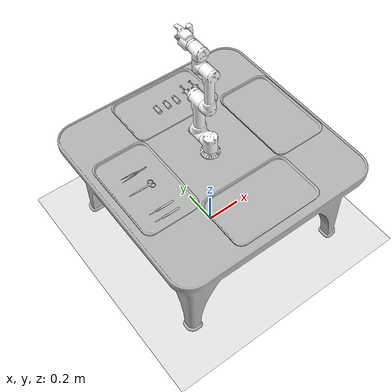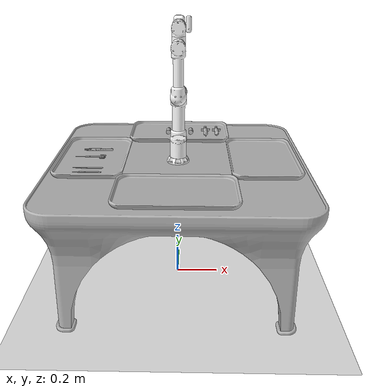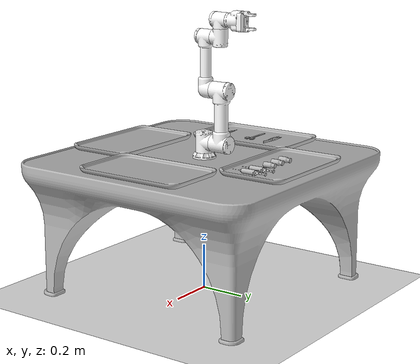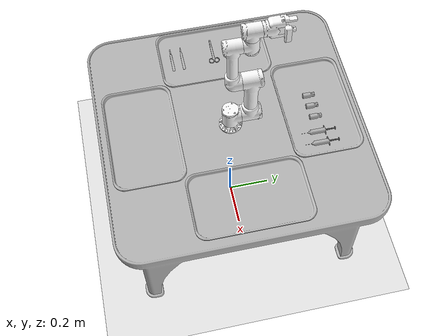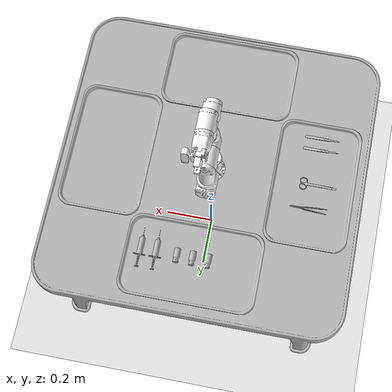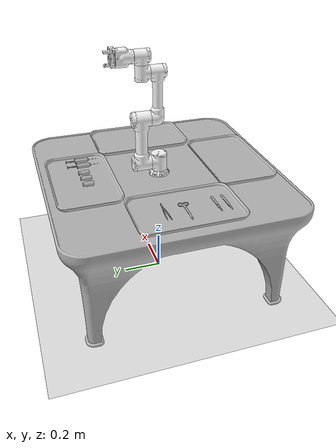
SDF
<?xml version="1.0"?>
<sdf version="1.7">
    <world name='dispensary'>
        <!--                         Physics Elements                          -->
        <physics name="1ms" type="ode">
            <max_step_size>0.01</max_step_size>
            <real_time_factor>1.0</real_time_factor>
            <ode>
                <solver>
                    <type>quick</type> <!-- Use a simpler solver -->
                    <iters>10</iters> <!-- Reduce the number of iterations -->
                </solver>
                <constraints>
                    <cfm>0.5</cfm> <!-- Increase constraint force mixing -->
                    <erp>0.1</erp> <!-- Reduce error reduction parameter -->
                </constraints>
            </ode>
        </physics>
        <plugin
            filename="ignition-gazebo-physics-system"
            name="ignition::gazebo::systems::Physics">
        </plugin>
        <plugin
            filename="ignition-gazebo-user-commands-system"
            name="ignition::gazebo::systems::UserCommands">
        </plugin>
        <plugin
            filename="ignition-gazebo-scene-broadcaster-system"
            name="ignition::gazebo::systems::SceneBroadcaster">
        </plugin>
        <plugin
            filename="ignition-gazebo-sensors-system"
            name="ignition::gazebo::systems::Sensors">
            <render_engine>ogre</render_engine>
        </plugin>

        <!-- World Lighting -->
        <light type="directional" name="sun">
            <cast_shadows>true</cast_shadows>
            <pose>0 0 10 0 0 0</pose>
            <diffuse>0.8 0.8 0.8 1</diffuse>
            <specular>0.2 0.2 0.2 1</specular>
            <attenuation>
                <range>1000</range>
                <constant>0.9</constant>
                <linear>0.01</linear>
                <quadratic>0.001</quadratic>
            </attenuation>
            <direction>-0.5 0.1 -0.9</direction>
        </light>

        <!--                            UI Elements                            -->
        <gui fullscreen="0">

            <!-- 3D scene -->
            <plugin filename="GzScene3D" name="3D View">
                <ignition-gui>
                <title>3D View</title>
                <property type="bool" key="showTitleBar">false</property>
                <property type="string" key="state">docked</property>
                </ignition-gui>

                <engine>ogre2</engine>
                <scene>scene</scene>
                <ambient_light>0.4 0.4 0.4</ambient_light>
                <background_color>0.6 0.6 0.6</background_color>
                <camera_pose>2 2 2 0 0.5 -2.5</camera_pose>
            </plugin>

            <!-- World Control Panel -->
            <plugin filename="WorldControl" name="World control">
                <ignition-gui>
                <title>World control</title>
                <property type="bool" key="showTitleBar">false</property>
                <property type="bool" key="resizable">false</property>
                <property type="double" key="height">72</property>
                <property type="double" key="width">121</property>
                <property type="double" key="z">1</property>

                <property type="string" key="state">floating</property>
                <anchors target="3D View">
                    <line own="left" target="left"/>
                    <line own="bottom" target="bottom"/>
                </anchors>
                </ignition-gui>

                <play_pause>true</play_pause>
                <step>true</step>
                <start_paused>true</start_paused>

            </plugin>

            <!-- World Statistics Panel -->
            <plugin filename="WorldStats" name="World stats">
                <ignition-gui>
                <title>World stats</title>
                <property type="bool" key="showTitleBar">false</property>
                <property type="bool" key="resizable">false</property>
                <property type="double" key="height">110</property>
                <property type="double" key="width">290</property>
                <property type="double" key="z">1</property>

                <property type="string" key="state">floating</property>
                <anchors target="3D View">
                    <line own="right" target="right"/>
                    <line own="bottom" target="bottom"/>
                </anchors>
                </ignition-gui>

                <sim_time>true</sim_time>
                <real_time>true</real_time>
                <real_time_factor>true</real_time_factor>
                <iterations>true</iterations>
            </plugin>

            <!-- Joint Position Controller Panel -->
            <plugin filename="JointPositionController" name="JointPositionController">
                <ignition-gui>
                <property type="double" key="height">600</property>
                <property type="double" key="width">400</property>

                <property type="string" key="state">floating</property>
                <anchors target="3D View">
                    <line own="right" target="right"/>
                    <line own="top" target="top"/>
                </anchors>
                </ignition-gui>
                <model_name>eb100</model_name>
            </plugin>

            <!-- Camera Tracking Panel -->
            <plugin filename="CameraTracking" name="Camera Tracking">
                <ignition-gui>
                <property key="resizable" type="bool">false</property>
                <property key="width" type="double">5</property>
                <property key="height" type="double">5</property>
                <property key="state" type="string">floating</property>
                <property key="showTitleBar" type="bool">false</property>
                </ignition-gui>
            </plugin>

            <!-- Image Display Panel -->
            <plugin filename="ImageDisplay" name="Image Display">
                <ignition-gui>
                <property key="state" type="string">docked</property>
                </ignition-gui>
            </plugin>

            <!-- Component Inspector Panel -->
            <plugin filename="ComponentInspector" name="Component inspector">
                <ignition-gui>
                <property type="string" key="state">docked</property>
                </ignition-gui>
            </plugin>

            <!-- Entity tree -->
            <plugin filename="EntityTree" name="Entity tree">
                <ignition-gui>
                <property type="string" key="state">docked</property>
                </ignition-gui>
            </plugin>

        </gui>

        <!--                              Objects                              -->
        <!-- Ground Plane -->
        <model name='ground_plane'>
            <static>true</static> <!-- This makes the ground plane static -->
            <pose>0 0 0 0 0 0</pose>
            <link name='ground_link'>
                <collision name='ground_collision'>
                    <geometry>
                        <plane>
                            <normal>0 0 1</normal>
                            <size>100 100</size>
                        </plane>
                    </geometry>
                </collision>
                <visual name='ground_visual'>
                    <geometry>
                        <plane>
                            <normal>0 0 1</normal>
                            <size>100 100</size>
                        </plane>
                    </geometry>
                    <material>
                        <script>
                            <uri>file://media/materials/scripts/gazebo.material</uri>
                            <name>Gazebo/White</name>
                        </script>
                        <ambient>1 1 1 0.5</ambient> <!-- Set ambient color with transparency -->
                        <diffuse>1 1 1 0.5</diffuse> <!-- Set diffuse color with transparency -->
                        <specular>1 1 1 0.5</specular> <!-- Set specular color with transparency -->
                    </material>
                </visual>
            </link>
        </model>

        <!-- Table -->
        <include>
            <name>table_link</name>
            <uri>
                ../models/table/table_link.sdf
            </uri>
            <pose>0 0 0.01 0 0 0</pose>
        </include>

        <!-- Source Tray - Reusable -->
        <include>
            <name>source_reusable_tray_link</name>
            <uri>
                ../models/tray/tray_link.sdf
            </uri>
            <pose>-0.40 0 0.61 0 0 0</pose>
        </include>

        <!-- Destination Tray - Reusable -->
        <include>
            <name>destination_resuable_tray_link</name>
            <uri>
                ../models/tray/tray_link.sdf
            </uri>
            <pose>0.40 0 0.61 0 0 0</pose>
        </include>

        <!-- Destination Tray - Disposable -->
        <include>
            <name>source_disposable_tray_link</name>
            <uri>
                ../models/tray/tray_link.sdf
            </uri>
            <pose>0 -0.40 0.61 0 0 1.5708</pose>
        </include>

        <!-- Source Tray - Disposable -->
        <include>
            <name>destination_disposable_tray_link</name>
            <uri>
                ../models/tray/tray_link.sdf
            </uri>
            <pose>0 0.40 0.61 0 0 1.5708</pose>
        </include>

        <!--                               Tools                               -->
        <!-- Syringe x 2 -->
        <include>
            <name>syringe1</name>
            <uri>
                ../models/syringe/syringe.sdf
            </uri>
            <pose>0.140 0.380 0.635 1.5708 1.5708 0</pose>
        </include>
        <include>
            <name>syringe2</name>
            <uri>
                ../models/syringe/syringe.sdf
            </uri>
            <pose>0.200 0.380 0.635 1.5708 1.5708 0</pose>
        </include>

        <!-- Vaccine Bottle x 3 -->
        <include>
            <name>vaccine1</name>
            <uri>
                ../models/vaccine_bottle/propofol.sdf
            </uri>
            <pose>0.060 0.380 0.635 0 0 1.5708</pose>
        </include>
        <include>
            <name>vaccine2</name>
            <uri>
                ../models/vaccine_bottle/ibuprofen.sdf
            </uri>
            <pose>0 0.380 0.635 0 0 1.5708</pose>
        </include>
        <include>
            <name>vaccine3</name>
            <uri>
                ../models/vaccine_bottle/ibuprofen.sdf
            </uri>
            <pose>-0.060 0.380 0.635 0 0 1.5708</pose>
        </include>

        <!-- Scalpel x 2 -->
        <include>
            <name>scalpel1</name>
            <uri>
                ../models/scalpel/scalpel.sdf
            </uri>
            <pose>-0.40 -0.20 0.625 0 0 0</pose>
        </include>
        <include>
            <name>scalpel2</name>
            <uri>
                ../models/scalpel/scalpel.sdf
            </uri>
            <pose>-0.40 -0.15 0.625 0 0 0</pose>
        </include>

        <!-- Scissors x 1 -->
        <include>
            <name>scissors1</name>
            <uri>
                ../models/scissors/scissors.sdf
            </uri>
            <pose>-0.40 0 0.625 1.5708 -1.5708 0</pose>
        </include>

        <!-- Tweezer x 1 -->
        <include>
            <name>tweezer1</name>
            <uri>
                ../models/tweezer/tweezer.sdf
            </uri>
            <pose>-0.40 0.1 0.625 1.5708 -1.5708 0</pose>
        </include>

        <!--                               Robot                               -->
        <include>
            <name>eb100</name>
            <uri>
                ../models/robot_arm/eb100.sdf
            </uri>
            <pose>0 0 0.6 0 0 0</pose>
        </include>

    </world>
</sdf>

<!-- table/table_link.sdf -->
<sdf version="1.6">
    <model name="table_link">
        <static>true</static>
        <link name="link">
            <collision name="collision">
                <pose>0 0 0.001 1.5708 0 1.5708</pose>
                <geometry>
                    <mesh>
                        <uri>meshes/o_table_link.obj</uri>
                    </mesh>
                </geometry>
            </collision>
            <visual name="visual">
                <pose>0 0 0.001 1.5708 0 1.5708</pose>
                <geometry>
                    <mesh>
                        <uri>meshes/o_table_link.obj</uri>
                    </mesh>
                </geometry>
            </visual>
        </link>
    </model>
</sdf>

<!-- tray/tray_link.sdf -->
<sdf version="1.6">
    <model name="tray_link">
        <static>false</static>
        <link name="link">
            <collision name="collision">
                <pose>0 0 0.001 1.5708 0 1.5708</pose>
                <geometry>
                    <mesh>
                        <uri>meshes/o_tray_link_v2.obj</uri>
                    </mesh>
                </geometry>
            </collision>
            <visual name="visual">
                <pose>0 0 0.001 1.5708 0 1.5708</pose>
                <geometry>
                    <mesh>
                        <uri>meshes/o_tray_link_v2.obj</uri>
                    </mesh>
                </geometry>
            </visual>
        </link>
    </model>
</sdf>

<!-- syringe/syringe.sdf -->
<sdf version="1.6">
    <model name="syringe">
        <static>false</static>
        <link name="link">
            <collision name="collision">
                <pose>0 0 0.001 1.5708 0 1.5708</pose>
                <geometry>
                    <mesh>
                        <uri>meshes/o_syringe_part_v3.obj</uri>
                    </mesh>
                </geometry>
            </collision>
            <visual name="visual">
                <pose>0 0 0.001 1.5708 0 1.5708</pose>
                <geometry>
                    <mesh>
                        <uri>meshes/o_syringe_part_v3.obj</uri>
                    </mesh>
                </geometry>
            </visual>
        </link>
    </model>
</sdf>

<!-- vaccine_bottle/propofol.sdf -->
<sdf version="1.6">
    <model name="vaccine">
        <static>false</static>
        <link name="link">
            <collision name="collision">
                <pose>0 0 0.001 0 0 -1.5708</pose>
                <geometry>
                    <mesh>
                        <uri>meshes/o_propofol.obj</uri>
                    </mesh>
                </geometry>
            </collision>
            <visual name="visual">
                <pose>0 0 0.001 0 0 -1.5708</pose>
                <geometry>
                    <mesh>
                        <uri>meshes/o_propofol.obj</uri>
                    </mesh>
                </geometry>
            </visual>
        </link>
    </model>
</sdf>

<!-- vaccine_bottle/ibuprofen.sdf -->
<sdf version="1.6">
    <model name="vaccine">
        <static>false</static>
        <link name="link">
            <collision name="collision">
                <pose>0 0 0.001 0 0 -1.5708</pose>
                <geometry>
                    <mesh>
                        <uri>meshes/o_ibuprofen.obj</uri>
                    </mesh>
                </geometry>
            </collision>
            <visual name="visual">
                <pose>0 0 0.001 0 0 -1.5708</pose>
                <geometry>
                    <mesh>
                        <uri>meshes/o_ibuprofen.obj</uri>
                    </mesh>
                </geometry>
            </visual>
        </link>
    </model>
</sdf>

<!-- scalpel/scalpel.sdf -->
<sdf version="1.6">
    <model name="scalpel">
        <static>false</static>
        <link name="link">
            <collision name="collision">
                <pose>0 0 0.001 0 0 0</pose>
                <geometry>
                    <mesh>
                        <uri>meshes/o_scalpel_v2.obj</uri>
                    </mesh>
                </geometry>
            </collision>
            <visual name="visual">
                <pose>0 0 0.001 0 0 0</pose>
                <geometry>
                    <mesh>
                        <uri>meshes/o_scalpel_v2.obj</uri>
                    </mesh>
                </geometry>
            </visual>
        </link>
    </model>
</sdf>

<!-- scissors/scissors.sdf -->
<sdf version="1.6">
    <model name="scissors">
        <static>false</static>
        <link name="link">
            <collision name="collision">
                <pose>0 0 0.001 1.5708 0 1.5708</pose>
                <geometry>
                    <mesh>
                        <uri>meshes/o_scissors_v3.obj</uri>
                    </mesh>
                </geometry>
            </collision>
            <visual name="visual">
                <pose>0 0 0.001 1.5708 0 1.5708</pose>
                <geometry>
                    <mesh>
                        <uri>meshes/o_scissors_v3.obj</uri>
                    </mesh>
                </geometry>
            </visual>
        </link>
    </model>
</sdf>

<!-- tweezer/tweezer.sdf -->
<sdf version="1.6">
    <model name="tweezer">
        <static>false</static>
        <link name="link">
            <collision name="collision">
                <pose>0 0 0.001 1.5708 0 1.5708</pose>
                <geometry>
                    <mesh>
                        <uri>meshes/o_tweezers_part_v3.obj</uri>
                    </mesh>
                </geometry>
            </collision>
            <visual name="visual">
                <pose>0 0 0.001 1.5708 0 1.5708</pose>
                <geometry>
                    <mesh>
                        <uri>meshes/o_tweezers_part_v3.obj</uri>
                    </mesh>
                </geometry>
            </visual>
        </link>
    </model>
</sdf>

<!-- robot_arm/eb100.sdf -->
<sdf version="1.7">
    <model name="EB100">
        <!-- Fix To World -->
        <joint name="ground_plane" type="fixed">
            <parent>world</parent>
            <child>base_link</child>
        </joint>
        <!-- Arm Links -->
        <link name="base_link">
            <visual name="base_link_visual">
                <geometry>
                    <mesh>
                        <uri>base_link/base_link.STL</uri>
                    </mesh>
                </geometry>
                <material>
                    <diffuse>1.0 1.0 1.0</diffuse>
                    <specular>1.0 1.0 1.0</specular>
                </material>
            </visual>
            <collision name="base_link_collision">
                <geometry>
                    <mesh>
                        <uri>base_link/base_link.STL</uri>
                    </mesh>
                </geometry>
                <surface>
                    <friction>
                        <ode>
                            <mu>1.05</mu>
                            <mu2>1.05</mu2>
                        </ode>
                    </friction>
                </surface>
            </collision>
            <inertial>
                <pose>-1.33024218671373E-07 5.42254364069815E-07 0.0149456241765188 0 0 0</pose>
                <mass>2.814271300104062</mass>
                <inertia>
                    <ixx>0.0075390636364814695</ixx>
                    <iyy>0.010508017427382959</iyy>
                    <izz>0.009864933638708275</izz>
                    <ixy>-1.5053124574783335e-05</ixy>
                    <ixz>-0.0012144328835738973</ixz>
                    <iyz>1.0434803501032979e-05</iyz>
                </inertia>
            </inertial>
        </link>
        <link name="link1">
            <pose relative_to="joint1">0 0 0 0 0 0</pose>
            <visual name="link1_visual">
                <geometry>
                    <mesh>
                        <uri>link_1/link1.STL</uri>
                    </mesh>
                </geometry>
                <material>
                    <diffuse>1.0 1.0 1.0</diffuse>
                    <specular>1.0 1.0 1.0</specular>
                </material>
            </visual>
            <collision name="link1_collision">
                <geometry>
                    <mesh>
                        <uri>link_1/link1.STL</uri>
                    </mesh>
                </geometry>
                <surface>
                    <friction>
                        <ode>
                            <mu>1.05</mu>
                            <mu2>1.05</mu2>
                        </ode>
                    </friction>
                </surface>
            </collision>
            <inertial>
                <pose>-3.49038868342818E-05 -0.00648920194363665 0.00701216463523289 0 0 0</pose>
                <mass>2.6433170427227215</mass>
                <inertia>
                    <ixx>0.017405076982879724</ixx>
                    <iyy>0.015352077935781732</iyy>
                    <izz>0.005987891663073857</izz>
                    <ixy>-8.687986369621078e-09</ixy>
                    <ixz>-1.6277819062920423e-08</ixz>
                    <iyz>0.004510855959102245</iyz>
                </inertia>
            </inertial>
        </link>
        <link name="link2">
            <pose relative_to="joint2">0 0 0 0 0 0</pose>
            <visual name="link2_visual">
                <geometry>
                    <mesh>
                        <uri>link_2/link2.STL</uri>
                    </mesh>
                </geometry>
                <material>
                    <diffuse>1.0 1.0 1.0</diffuse>
                    <specular>1.0 1.0 1.0</specular>
                </material>
            </visual>
            <collision name="link2_collision">
                <geometry>
                    <mesh>
                        <uri>link_2/link2.STL</uri>
                    </mesh>
                </geometry>
                <surface>
                    <friction>
                        <ode>
                            <mu>1.05</mu>
                            <mu2>1.05</mu2>
                        </ode>
                    </friction>
                </surface>
            </collision>
            <inertial>
                <pose>5.25111081205538E-05 0.11715485741318 -0.00391005557091638 0 0 0</pose>
                <mass>2.6652755331661186</mass>
                <inertia>
                    <ixx>0.01778694005635383</ixx>
                    <iyy>0.006044133867952844</iyy>
                    <izz>0.01571095500455695</izz>
                    <ixy>8.70635625879119e-08</ixy>
                    <ixz>3.752072058394008e-08</ixz>
                    <iyz>-0.004599490295490376</iyz>
                </inertia>
            </inertial>
        </link>
        <link name="link3">
            <pose relative_to="joint3">0 0 0 0 0 0</pose>
            <visual name="link3_visual">
                <geometry>
                    <mesh>
                        <uri>link_3/link3.STL</uri>
                    </mesh>
                </geometry>
                <material>
                    <diffuse>1.0 1.0 1.0</diffuse>
                    <specular>1.0 1.0 1.0</specular>
                </material>
            </visual>
            <collision name="link3_collision">
                <geometry>
                    <mesh>
                        <uri>link_3/link3.STL</uri>
                    </mesh>
                </geometry>
                <surface>
                    <friction>
                        <ode>
                            <mu>1.05</mu>
                            <mu2>1.05</mu2>
                        </ode>
                    </friction>
                </surface>
            </collision>
            <inertial>
                <pose>-3.34027587025817E-06 0.108727898112191 0.000786655462555005 0 0 0</pose>
                <mass>2.3293714829045733</mass>
                <inertia>
                    <ixx>0.0075496764161139766</ixx>
                    <iyy>0.009680676080191398</iyy>
                    <izz>0.007944557422008086</izz>
                    <ixy>-0.0024320464513492225</ixy>
                    <ixz>-0.003250815048103007</ixz>
                    <iyz>-0.0021316282421730694</iyz>
                </inertia>
            </inertial>
        </link>
        <link name="link4">
            <pose relative_to="joint4">0 0 0 0 0 0</pose>
            <visual name="link4_visual">
                <geometry>
                    <mesh>
                        <uri>link_4/link4.STL</uri>
                    </mesh>
                </geometry>
                <material>
                    <diffuse>1.0 1.0 1.0</diffuse>
                    <specular>1.0 1.0 1.0</specular>
                </material>
            </visual>
            <collision name="link4_collision">
                <geometry>
                    <mesh>
                        <uri>link_4/link4.STL</uri>
                    </mesh>
                </geometry>
                <surface>
                    <friction>
                        <ode>
                            <mu>1.05</mu>
                            <mu2>1.05</mu2>
                        </ode>
                    </friction>
                </surface>
            </collision>
            <inertial>
                <pose>-1.44468152066875E-05 0.00662054639180243 0.0677858766519277 0 0 0</pose>
                <mass>2.3104763646281508</mass>
                <inertia>
                    <ixx>0.007764568814864828</ixx>
                    <iyy>0.008015776929980149</iyy>
                    <izz>0.009955882308071066</izz>
                    <ixy>0.003371475204045935</ixy>
                    <ixz>-0.002343621113168248</ixz>
                    <iyz>0.0022917526161470624</iyz>
                </inertia>
            </inertial>
        </link>
        <link name="link5">
            <pose relative_to="joint5">0 0 0 0 0 0</pose>
            <visual name="link5_visual">
                <geometry>
                    <mesh>
                        <uri>link_5/link5.STL</uri>
                    </mesh>
                </geometry>
                <material>
                    <diffuse>1.0 1.0 1.0</diffuse>
                    <specular>1.0 1.0 1.0</specular>
                </material>
            </visual>
            <collision name="link5_collision">
                <geometry>
                    <mesh>
                        <uri>link_5/link5.STL</uri>
                    </mesh>
                </geometry>
                <surface>
                    <friction>
                        <ode>
                            <mu>1.05</mu>
                            <mu2>1.05</mu2>
                        </ode>
                    </friction>
                </surface>
            </collision>
            <inertial>
                <pose>1.588131219553E-05 0.0677856742896595 0.00662015510693871 0 0 0</pose>
                <mass>2.6226426154892004</mass>
                <inertia>
                    <ixx>0.029070538014399377</ixx>
                    <iyy>0.027638529986528795</iyy>
                    <izz>0.004251111234400737</izz>
                    <ixy>6.208738268725568e-07</ixy>
                    <ixz>-1.0059151925023392e-05</ixz>
                    <iyz>-0.007424306477850814</iyz>
                </inertia>
            </inertial>
        </link>
        <link name="link6">
            <pose relative_to="joint6">0 0 0 0 0 0</pose>
            <visual name="link6_visual">
                <geometry>
                    <mesh>
                        <uri>link_6/link6.STL</uri>
                    </mesh>
                </geometry>
                <material>
                    <diffuse>1.0 1.0 1.0</diffuse>
                    <specular>1.0 1.0 1.0</specular>
                </material>
            </visual>
            <collision name="link6_collision">
                <geometry>
                    <mesh>
                        <uri>link_6/link6.STL</uri>
                    </mesh>
                </geometry>
                <surface>
                    <friction>
                        <ode>
                            <mu>1.05</mu>
                            <mu2>1.05</mu2>
                        </ode>
                    </friction>
                </surface>
            </collision>
            <inertial>
                <pose>-4.85506410887449E-05 -0.000772066948343975 0.0864369192980011 0 0 0</pose>
                <mass>1.5025804886626795</mass>
                <inertia>
                    <ixx>0.002940555801469018</ixx>
                    <iyy>0.00392105201248677</iyy>
                    <izz>0.0054115603870960195</izz>
                    <ixy>-0.00042391108351381507</ixy>
                    <ixz>0.000610007735338717</ixz>
                    <iyz>0.00012647545430836214</iyz>
                </inertia>
            </inertial>
        </link>

        <!-- Gripper Finger Links -->
        <link name="gripper_left_link">
            <pose relative_to="gripper_left_joint">0 0 0 0 0 0</pose>
            <visual name="gripper_left_visual">
                <geometry>
                    <mesh>
                        <uri>gripper_left_link/gripper_left_link.STL</uri>
                    </mesh>
                </geometry>
                <material>
                    <diffuse>1.0 1.0 1.0</diffuse>
                    <specular>1.0 1.0 1.0</specular>
                </material>
            </visual>
            <collision name="gripper_left_collision">
                <geometry>
                    <mesh>
                        <uri>gripper_left_link/gripper_left_link.STL</uri>
                    </mesh>
                </geometry>
                <surface>
                    <friction>
                        <ode>
                            <mu>2.15</mu>
                            <mu2>2.15</mu2>
                        </ode>
                    </friction>
                </surface>
            </collision>
            <inertial>
                <pose>-0.230028099250672 0.048706949092005 0.296932678246992 0 0 0</pose>
                <mass>0.02238453537819424</mass>
                <inertia>
                    <ixx>6.74804167363695e-05</ixx>
                    <iyy>6.627189221641395e-05</iyy>
                    <izz>1.550396267804825e-05</izz>
                    <ixy>-4.1027443646025676e-09</ixy>
                    <ixz>1.8693673970152995e-08</ixz>
                    <iyz>1.1967548474390802e-05</iyz>
                </inertia>
            </inertial>
        </link>
        <link name="gripper_right_link">
            <pose relative_to="gripper_right_joint">0 0 0 0 0 0</pose>
            <visual name="gripper_right_visual">
                <geometry>
                    <mesh>
                        <uri>gripper_right_link/gripper_right_link.STL</uri>
                    </mesh>
                </geometry>
                <material>
                    <diffuse>1.0 1.0 1.0</diffuse>
                    <specular>1.0 1.0 1.0</specular>
                </material>
            </visual>
            <collision name="gripper_right_collision">
                <geometry>
                    <mesh>
                        <uri>gripper_right_link/gripper_right_link.STL</uri>
                    </mesh>
                </geometry>
                <surface>
                    <friction>
                        <ode>
                            <mu>2.15</mu>
                            <mu2>2.15</mu2>
                        </ode>
                    </friction>
                </surface>
            </collision>
            <inertial>
                <pose>0.279241572361513 0.0486859261203842 -0.281739991890775 0 0 0</pose>
                <mass>0.02238453537819424</mass>
                <inertia>
                    <ixx>6.74804167363695e-05</ixx>
                    <iyy>6.627189221641395e-05</iyy>
                    <izz>1.550396267804825e-05</izz>
                    <ixy>-4.1027443646025676e-09</ixy>
                    <ixz>1.8693673970152995e-08</ixz>
                    <iyz>1.1967548474390802e-05</iyz>
                </inertia>
            </inertial>
        </link>
        <link name="camera_link">
            <pose relative_to="camera_joint">0 0 0 0 -1.5708 0</pose>
            <visual name="camera_link_visual">
                <geometry>
                    <mesh>
                        <uri>camera_link/camera.stl</uri>
                        <scale>0.001 0.001 0.001</scale>
                    </mesh>
                </geometry>
                <material>
                    <diffuse>1.0 1.0 1.0</diffuse>
                    <specular>1.0 1.0 1.0</specular>
                </material>
            </visual>
            <collision name="camera_link_collision">
                <geometry>
                    <mesh>
                        <uri>camera_link/camera.stl</uri>
                        <scale>0.001 0.001 0.001</scale>
                    </mesh>
                </geometry>
                <surface>
                    <friction>
                        <ode>
                            <mu>1.05</mu>
                            <mu2>1.05</mu2>
                        </ode>
                    </friction>
                </surface>
            </collision>
            <inertial>
                <pose>-0.011644453579349 -0.000127541365236405 -0.0168801747695049 0 0 0</pose>
                <mass>0.000078</mass>
                <inertia>
                    <ixx>1.4393E-05</ixx>
                    <ixy>1.0273E-08</ixy>
                    <ixz>-7.719E-10</ixz>
                    <iyy>4.4785E-06</iyy>
                    <iyz>4.6621E-09</iyz>
                    <izz>1.2723E-05</izz>
                </inertia>
            </inertial>
            <sensor name="camera" type="camera">
                <camera>
                    <horizontal_fov>1.919</horizontal_fov>
                    <image>
                        <width>640</width>
                        <height>480</height>
                        <format>R8G8B8</format>
                    </image>
                    <clip>
                        <near>0.1</near>
                        <far>100</far>
                    </clip>
                </camera>
                <always_on>1</always_on>
                <update_rate>30</update_rate>
                <visualize>true</visualize>
                <topic>camera/image</topic> <!-- Updated topic name for clarity -->
            </sensor>
            <plugin filename="ignition-gazebo-camera-system" name="ignition::gazebo::systems::Camera">
                <camera>
                    <image>
                        <width>640</width>
                        <height>480</height>
                        <format>R8G8B8</format>
                    </image>
                    <update_rate>30</update_rate>
                </camera>
            </plugin>
        </link>

        <!-- Arm Joints -->
        <joint name="joint1" type="revolute">
            <pose relative_to="base_link">0.00017721 -0.00015518 0.076035 -1.5708 0 0</pose>
            <parent>base_link</parent>
            <child>link1</child>
            <axis>
                <xyz>0 -1 0</xyz>
                <limit>
                    <effort>87</effort>
                    <lower>-3.1415926535897932384626433832795</lower>
                    <upper>3.1415926535897932384626433832795</upper>
                    <velocity>2.617993877991494</velocity>
                </limit>
                <dynamics>
                    <spring_reference>0</spring_reference>
                    <spring_stiffness>0</spring_stiffness>
                    <damping>21.75</damping>
                    <friction>3.48</friction>
                </dynamics>
            </axis>
        </joint>
        <joint name="joint2" type="revolute">
            <pose relative_to="link1">0 0 0.0911 3.1416 0 0</pose>
            <parent>link1</parent>
            <child>link2</child>
            <axis>
                <xyz>0 0 -1</xyz>
                <limit>
                    <effort>87</effort>
                    <lower>-3.1415926535897932384626433832795</lower>
                    <upper>3.1415926535897932384626433832795</upper>
                    <velocity>2.617993877991494</velocity>
                </limit>
                <dynamics>
                    <spring_reference>0</spring_reference>
                    <spring_stiffness>0</spring_stiffness>
                    <damping>21.75</damping>
                    <friction>3.48</friction>
                </dynamics>
            </axis>
        </joint>
        <joint name="joint3" type="revolute">
            <pose relative_to="link2">0.0002 0.23547 0.083104 0 0 0</pose>
            <parent>link2</parent>
            <child>link3</child>
            <axis>
                <xyz>0 0 -1</xyz>
                <limit>
                    <effort>87</effort>
                    <lower>-3.1415926535897932384626433832795</lower>
                    <upper>3.1415926535897932384626433832795</upper>
                    <velocity>2.617993877991494</velocity>
                </limit>
                <dynamics>
                    <spring_reference>0</spring_reference>
                    <spring_stiffness>0</spring_stiffness>
                    <damping>21.75</damping>
                    <friction>3.48</friction>
                </dynamics>
            </axis>
        </joint>
        <joint name="joint4" type="revolute">
            <pose relative_to="link3">0 0.2290554354712 0 -3.1416 0 0</pose>
            <parent>link3</parent>
            <child>link4</child>
            <axis>
                <xyz>0 0 -1</xyz>
                <limit>
                    <effort>87</effort>
                    <lower>-3.1415926535897932384626433832795</lower>
                    <upper>3.1415926535897932384626433832795</upper>
                    <velocity>2.617993877991494</velocity>
                </limit>
                <dynamics>
                    <spring_reference>0</spring_reference>
                    <spring_stiffness>0</spring_stiffness>
                    <damping>21.75</damping>
                    <friction>3.48</friction>
                </dynamics>
            </axis>
        </joint>
        <joint name="joint5" type="revolute">
            <pose relative_to="link4">0 0 0.0769999999999998 3.1416 0 0</pose>
            <parent>link4</parent>
            <child>link5</child>
            <axis>
                <xyz>0 -1 0</xyz>
                <limit>
                    <effort>12</effort>
                    <lower>-3.1415926535897932384626433832795</lower>
                    <upper>3.1415926535897932384626433832795</upper>
                    <velocity>3.1415926535897932384626433832795</velocity>
                </limit>
                <dynamics>
                    <spring_reference>0</spring_reference>
                    <spring_stiffness>0</spring_stiffness>
                    <damping>3.0</damping>
                    <friction>0.48</friction>
                </dynamics>
            </axis>
        </joint>
        <joint name="joint6" type="revolute">
            <pose relative_to="link5">0 0.077 0 -3.1416 0 0</pose>
            <parent>link5</parent>
            <child>link6</child>
            <axis>
                <xyz>0 0 -1</xyz>
                <limit>
                    <effort>12</effort>
                    <lower>-3.1415926535897932384626433832795</lower>
                    <upper>3.1415926535897932384626433832795</upper>
                    <velocity>3.1415926535897932384626433832795</velocity>
                </limit>
                <dynamics>
                    <spring_reference>0</spring_reference>
                    <spring_stiffness>0</spring_stiffness>
                    <damping>3.0</damping>
                    <friction>0.48</friction>
                </dynamics>
            </axis>
        </joint>

        <!-- Finger Joints -->
        <joint name="gripper_left_joint" type="prismatic">
            <pose relative_to="link6">-0.291197990250782 0.255084835806096 0.0865221108762051 1.57079632679489 0 1.57079632679489</pose>
            <parent>link6</parent>
            <child>gripper_left_link</child>
            <axis>
                <xyz>1 0 0</xyz>
                <limit>
                    <effort>20</effort>
                    <lower>-0.04</lower>
                    <upper>0</upper>
                    <velocity>0.2</velocity>
                </limit>
                <dynamics>
                    <spring_reference>0</spring_reference>
                    <spring_stiffness>0</spring_stiffness>
                    <damping>10</damping>
                    <friction>0.5</friction>
                </dynamics>
            </axis>
        </joint>
        <joint name="gripper_right_joint" type="prismatic">
            <pose relative_to="link6">-0.287864518042259 0.254184835806095 0.086722110876205 1.5707963267949 0 -1.5707963267949</pose>
            <parent>link6</parent>
            <child>gripper_right_link</child>
            <axis>
                <xyz>-1 0 0</xyz>
                <limit>
                    <effort>20</effort>
                    <lower>0.0</lower>
                    <upper>0.04</upper>
                    <velocity>0.2</velocity>
                </limit>
                <dynamics>
                    <spring_reference>0</spring_reference>
                    <spring_stiffness>0</spring_stiffness>
                    <damping>10</damping>
                    <friction>0.5</friction>
                </dynamics>
            </axis>
        </joint>
        <joint name="camera_joint" type="fixed">
            <pose relative_to="link6">0.0600999999999985 -0.000500000224238906 0.127499999999999 0 0 0</pose>
            <parent>link6</parent>
            <child>camera_link</child>
        </joint>

        <!-- Joint controller plugins -->
        <plugin filename="ignition-gazebo-joint-position-controller-system" name="ignition::gazebo::systems::JointPositionController">
            <joint_name>joint1</joint_name>
            <p_gain>50</p_gain>
            <d_gain>20</d_gain>
            <i_gain>0</i_gain>
            <i_min>-1</i_min>
            <i_max>1</i_max>
            <cmd_min>-87</cmd_min>
            <cmd_max>87</cmd_max>
            <topic>/joint_angles/joint1</topic>
        </plugin>
        <plugin filename="ignition-gazebo-joint-position-controller-system" name="ignition::gazebo::systems::JointPositionController">
            <joint_name>joint2</joint_name>
            <p_gain>10000</p_gain>
            <i_gain>0</i_gain>
            <d_gain>500</d_gain>
            <i_max>1</i_max>
            <i_min>-1</i_min>
            <cmd_max>87</cmd_max>
            <cmd_min>-87</cmd_min>
            <topic>/joint_angles/joint2</topic>
        </plugin>
        <plugin filename="ignition-gazebo-joint-position-controller-system" name="ignition::gazebo::systems::JointPositionController">
            <joint_name>joint3</joint_name>
            <p_gain>100</p_gain>
            <i_gain>0</i_gain>
            <d_gain>10</d_gain>
            <i_max>1</i_max>
            <i_min>-1</i_min>
            <cmd_max>87</cmd_max>
            <cmd_min>-87</cmd_min>
            <topic>/joint_angles/joint3</topic>
        </plugin>
        <plugin filename="ignition-gazebo-joint-position-controller-system" name="ignition::gazebo::systems::JointPositionController">
            <joint_name>joint4</joint_name>
            <p_gain>1000</p_gain>
            <i_gain>0</i_gain>
            <d_gain>50</d_gain>
            <i_max>1</i_max>
            <i_min>-1</i_min>
            <cmd_max>87</cmd_max>
            <cmd_min>-87</cmd_min>
            <topic>/joint_angles/joint4</topic>
        </plugin>
        <plugin filename="ignition-gazebo-joint-position-controller-system" name="ignition::gazebo::systems::JointPositionController">
            <joint_name>joint5</joint_name>
            <p_gain>100</p_gain>
            <i_gain>0</i_gain>
            <d_gain>50</d_gain>
            <i_max>1</i_max>
            <i_min>-1</i_min>
            <cmd_max>12</cmd_max>
            <cmd_min>-12</cmd_min>
            <topic>/joint_angles/joint5</topic>
        </plugin>
        <plugin filename="ignition-gazebo-joint-position-controller-system" name="ignition::gazebo::systems::JointPositionController">
            <joint_name>joint6</joint_name>
            <p_gain>100</p_gain>
            <i_gain>0</i_gain>
            <d_gain>10</d_gain>
            <i_max>1</i_max>
            <i_min>-1</i_min>
            <cmd_max>12</cmd_max>
            <cmd_min>-12</cmd_min>
            <topic>/joint_angles/joint6</topic>
        </plugin>
        <plugin filename="ignition-gazebo-joint-position-controller-system" name="ignition::gazebo::systems::JointPositionController">
            <joint_name>gripper_left_joint</joint_name>
            <p_gain>100</p_gain>
            <d_gain>50</d_gain>
            <i_gain>0</i_gain>
            <i_min>-1</i_min>
            <i_max>1</i_max>
            <cmd_min>-20</cmd_min>
            <cmd_max>20</cmd_max>
            <topic>/joint_angles/gripper_left_joint</topic>
        </plugin>
        <plugin filename="ignition-gazebo-joint-position-controller-system" name="ignition::gazebo::systems::JointPositionController">
            <joint_name>gripper_right_joint</joint_name>
            <p_gain>100</p_gain>
            <d_gain>50</d_gain>
            <i_gain>0</i_gain>
            <i_min>-1</i_min>
            <i_max>1</i_max>
            <cmd_min>-20</cmd_min>
            <cmd_max>20</cmd_max>
            <topic>/joint_angles/gripper_right_joint</topic>
        </plugin>
    </model>
</sdf>
